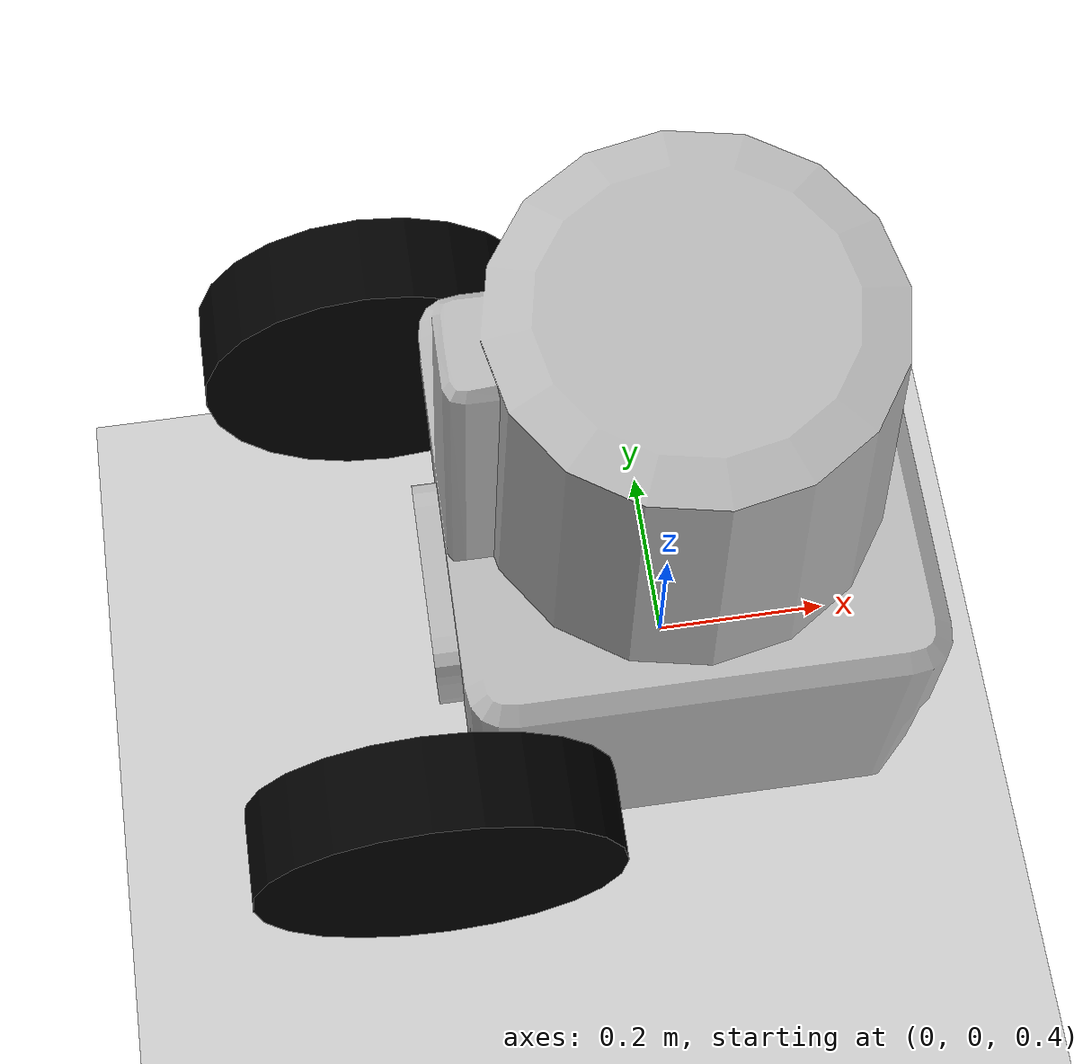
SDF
<?xml version="1.0" encoding="utf-8"?>
<sdf version='1.9'>
  <world name='empty'>
    <physics name='1ms' type='ignored'>
      <max_step_size>0.001</max_step_size>
      <real_time_factor>1</real_time_factor>
      <real_time_update_rate>1000</real_time_update_rate>
    </physics>
    <plugin name='gz::sim::systems::Physics' filename='ignition-gazebo-physics-system'/>
    <plugin name='gz::sim::systems::UserCommands' filename='ignition-gazebo-user-commands-system'/>
    <plugin name='gz::sim::systems::SceneBroadcaster' filename='ignition-gazebo-scene-broadcaster-system'/>
    <plugin name='gz::sim::systems::Contact' filename='ignition-gazebo-contact-system'/>
    <gravity>0 0 -9.8</gravity>
    <magnetic_field>6e-06 2.3e-05 -4.2e-05</magnetic_field>
    <atmosphere type='adiabatic'/>
    <scene>
      <ambient>0.4 0.4 0.4 1</ambient>
      <background>0.7 0.7 0.7 1</background>
      <shadows>true</shadows>
    </scene>

    <include>
      <uri>file://resources/active_sensor/active_sensor.sdf</uri>
      <pose>0 0 0.5 0 0 0</pose>
  </include>
    <model name='ground_plane'>
      <static>true</static>
      <link name='link'>
        <collision name='collision'>
          <geometry>
            <plane>
              <normal>0 0 1</normal>
              <size>100 100</size>
            </plane>
          </geometry>
          <surface>
            <friction>
              <ode/>
            </friction>
            <bounce/>
            <contact/>
          </surface>
        </collision>
        <visual name='visual'>
          <geometry>
            <plane>
              <normal>0 0 1</normal>
              <size>100 100</size>
            </plane>
          </geometry>
          <material>
            <ambient>0.8 0.8 0.8 1</ambient>
            <diffuse>0.8 0.8 0.8 1</diffuse>
            <specular>0.8 0.8 0.8 1</specular>
          </material>
        </visual>
        <pose>0 0 0 0 -0 0</pose>
        <inertial>
          <pose>0 0 0 0 -0 0</pose>
          <mass>1</mass>
          <inertia>
            <ixx>1</ixx>
            <ixy>0</ixy>
            <ixz>0</ixz>
            <iyy>1</iyy>
            <iyz>0</iyz>
            <izz>1</izz>
          </inertia>
        </inertial>
        <enable_wind>false</enable_wind>
      </link>
      <pose>0 0 0 0 -0 0</pose>
      <self_collide>false</self_collide>
    </model>
    <light name='sun' type='directional'>
      <pose>0 0 10 0 -0 0</pose>
      <cast_shadows>true</cast_shadows>
      <intensity>1</intensity>
      <direction>-0.5 0.1 -0.9</direction>
      <diffuse>0.8 0.8 0.8 1</diffuse>
      <specular>0.2 0.2 0.2 1</specular>
      <attenuation>
        <range>1000</range>
        <linear>0.01</linear>
        <constant>0.90000000000000002</constant>
        <quadratic>0.001</quadratic>
      </attenuation>
      <spot>
        <inner_angle>0</inner_angle>
        <outer_angle>0</outer_angle>
        <falloff>0</falloff>
      </spot>
    </light>
  </world>
</sdf>

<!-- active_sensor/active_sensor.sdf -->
<sdf version='1.6'>
  <model name='ActiveSensor'>
    <link name='body'>
      <pose>0 0 0 0 0 0</pose>
      <inertial> <!--inertial properties of the link mass, inertia matix-->
          <mass>1.14395</mass>
          <inertia>
              <ixx>0.095329</ixx>
              <ixy>0</ixy>
              <ixz>0</ixz>
              <iyy>0.381317</iyy>
              <iyz>0</iyz>
              <izz>0.476646</izz>
          </inertia>
      </inertial>
      <collision name='collision_base'>
        <pose>0 0 0.0175015175 0 0 0</pose>
        <geometry>
          <box>
            <size>0.05001062 0.05001062 0.035003035</size>
            <scale>10 10 10</scale>
          </box>
        </geometry>
      </collision>
      <collision name='collision_top'>
        <pose>0 0 0.0525045525 0 0 0</pose>
        <geometry>
          <cylinder>
            <radius>0.02</radius>
            <length>0.035003035</length>
          </cylinder>
          <scale>10 10 10</scale>
        </geometry>
      </collision>
      <visual name='visual'>
        <pose>0 0 0 0 0 1.5707</pose>
        <geometry>
          <mesh>
            <uri>file://resources/active_sensor/meshes/hokuyo_urg04lx.dae</uri>
            <scale>10 10 10</scale>
          </mesh>
        </geometry>
      </visual>
    </link>
    <link name='left_wheel'>
      <pose relative_to="body">-0.3 0.3 0.15 -1.5707 0 0</pose>
      <inertial>
          <mass>1</mass>
          <inertia>
              <ixx>0.013333</ixx>
              <ixy>0</ixy>
              <ixz>0</ixz>
              <iyy>0.013333</iyy>
              <iyz>0</iyz>
              <izz>0.02</izz>
          </inertia>
      </inertial>
      <visual name='visual'>
          <geometry>
              <cylinder>
                  <radius>0.2</radius>
                  <length>0.1</length>
              </cylinder>
          </geometry>
          <material>
              <ambient>0.0 0.0 0.0 1</ambient>
              <diffuse>0.0 0.0 0.0 1</diffuse>
              <specular>0.0 0.0 0.0 1</specular>
          </material>
      </visual>
      <collision name='collision'>
          <geometry>
              <cylinder>
                  <radius>0.2</radius>
                  <length>0.1</length>
              </cylinder>
          </geometry>
      </collision>
    </link>
    <link name='right_wheel'>
        <pose relative_to="body">-0.3 -0.3 0.15 -1.5707 0 0</pose> <!--angles are in radian-->
        <inertial>
            <mass>1</mass>
            <inertia>
                <ixx>0.013333</ixx>
                <ixy>0</ixy>
                <ixz>0</ixz>
                <iyy>0.013333</iyy>
                <iyz>0</iyz>
                <izz>0.02</izz>
            </inertia>
        </inertial>
        <visual name='visual'>
            <geometry>
                <cylinder>
                    <radius>0.2</radius>
                    <length>0.1</length>
                </cylinder>
            </geometry>
            <material>
                <ambient>0.0 0.0 0.0 1</ambient>
                <diffuse>0.0 0.0 0.0 1</diffuse>
                <specular>0.0 0.0 0.0 1</specular>
            </material>
        </visual>
        <collision name='collision'>
            <geometry>
                <cylinder>
                    <radius>0.2</radius>
                    <length>0.1</length>
                </cylinder>
            </geometry>
        </collision>
    </link>
    <frame name="caster_frame" attached_to='body'>
        <pose>0.15 0 0.0 0 0 0</pose>
    </frame>
    <link name='caster'>
      <pose relative_to='caster_frame'/>
      <inertial>
          <mass>3</mass>
          <inertia>
              <ixx>0.016</ixx>
              <ixy>0</ixy>
              <ixz>0</ixz>
              <iyy>0.016</iyy>
              <iyz>0</iyz>
              <izz>0.016</izz>
          </inertia>
      </inertial>
      <visual name='visual'>
          <geometry>
              <sphere>
                  <radius>0.08</radius>
              </sphere>
          </geometry>
          <material>
              <ambient>0.0 0.0 0.0 1</ambient>
              <diffuse>0.0 0.0 0.0 1</diffuse>
              <specular>0.0 0.0 0.0 1</specular>
          </material>
      </visual>
      <collision name='collision'>
          <geometry>
              <sphere>
                  <radius>0.08</radius>
              </sphere>
          </geometry>
      </collision>
    </link>
    <joint name='left_wheel_joint' type='revolute'>
        <pose relative_to='left_wheel'/>
        <parent>body</parent>
        <child>left_wheel</child>
        <axis>
            <xyz expressed_in='__model__'>0 1 0</xyz> <!--can be defined as any frame or even arbitrary frames-->
            <limit>
                <lower>-1.79769e+308</lower>    <!--negative infinity-->
                <upper>1.79769e+308</upper>     <!--positive infinity-->
            </limit>
        </axis>
    </joint>
    <joint name='right_wheel_joint' type='revolute'>
        <pose relative_to='right_wheel'/>
        <parent>body</parent>
        <child>right_wheel</child>
        <axis>
            <xyz expressed_in='__model__'>0 1 0</xyz>
            <limit>
                <lower>-1.79769e+308</lower>    <!--negative infinity-->
                <upper>1.79769e+308</upper>     <!--positive infinity-->
            </limit>
        </axis>
    </joint>
    <joint name='caster_wheel' type='ball'>
        <parent>body</parent>
        <child>caster</child>
    </joint>
    <plugin
            filename="libignition-gazebo-diff-drive-system.so"
            name="ignition::gazebo::systems::DiffDrive">
            <left_joint>left_wheel_joint</left_joint>
            <right_joint>right_wheel_joint</right_joint>
            <wheel_separation>2</wheel_separation>
            <wheel_radius>0.1</wheel_radius>
            <topic>ActiveSensor/cmd_vel</topic>
    </plugin>
    <plugin name='ignition::gazebo::systems::OdometryPublisher' filename='ignition-gazebo-odometry-publisher-system'>
      <odom_topic>/ActiveSensor/odometry</odom_topic>
      <dimensions>3</dimensions>
    </plugin>
  </model>
</sdf>
